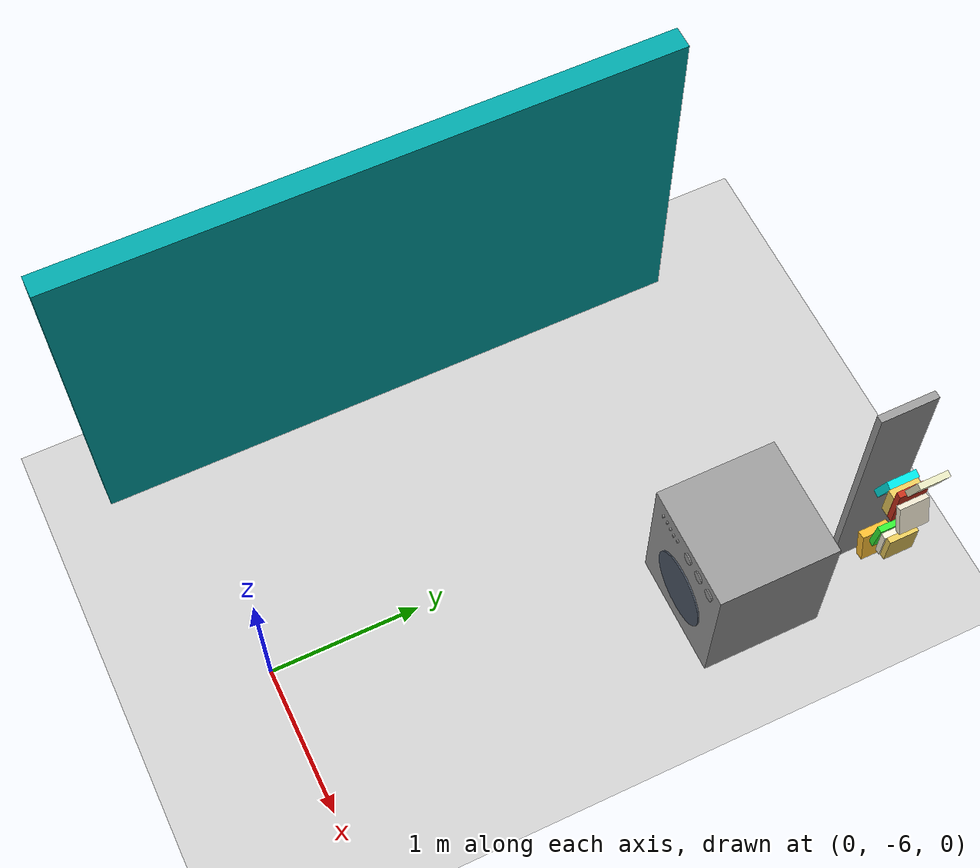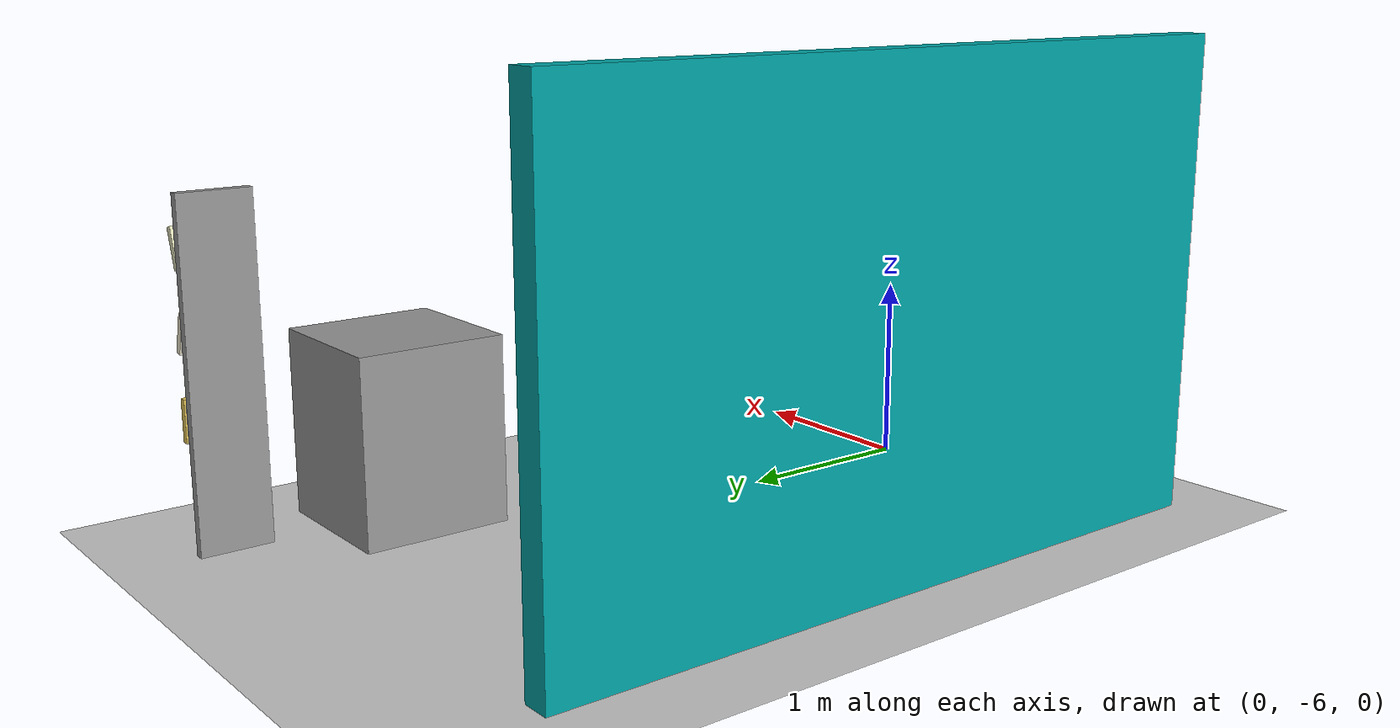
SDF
<sdf version="1.7">
 <world name="default">
  <model name="ground_plane">
   <static>1</static>
   <link name="link">
    <collision name="collision">
     <geometry><plane><normal>0 0 1</normal><size>100 100</size></plane></geometry>
     <surface>
      <contact><collide_bitmask>65535</collide_bitmask></contact>
      <friction><ode><mu>100</mu><mu2>50</mu2></ode></friction>
     </surface>
    </collision>
    <visual name="visual">
     <cast_shadows>0</cast_shadows>
     <geometry><plane><normal>0 0 1</normal><size>100 100</size></plane></geometry>
     <material>
      <script><uri>file://media/materials/scripts/gazebo.material</uri><name>Gazebo/Grey</name></script>
     </material>
    </visual>
   </link>
  </model>
  <model name="my_building_p4">
   <link name="Wall_30">
    <pose>-1.57502 -7.45997 0 0 -0 1.57081</pose>
    <inertial>
     <mass>1</mass>
     <inertia><ixx>1</ixx><ixy>0</ixy><ixz>0</ixz><iyy>1</iyy><iyz>0</iyz><izz>1</izz></inertia>
    </inertial>
    <visual name="Wall_30_Visual">
     <pose>0 0 1.25 0 -0 0</pose>
     <geometry><box><size>3.99989 0.15 2.5</size></box></geometry>
     <material>
      <script><uri>file://media/materials/scripts/gazebo.material</uri><name>Gazebo/Grey</name></script>
      <ambient>0 0.647 0.655 1</ambient>
      <shader type="pixel"><normal_map>__default__</normal_map></shader>
      <diffuse>0 0.647 0.655 1</diffuse>
      <specular>0.01 0.01 0.01 1</specular>
      <emissive>0 0 0 1</emissive>
     </material>
     <meta><layer>0</layer></meta>
    </visual>
    <collision name="Wall_30_Collision">
     <pose>0 0 1.25 0 -0 0</pose>
     <geometry><box><size>3.99989 0.15 2.5</size></box></geometry>
     <surface>
      <friction>
       <ode><mu>1</mu><mu2>1</mu2><fdir1>0 0 0</fdir1><slip1>0</slip1><slip2>0</slip2></ode>
       <torsional>
        <coefficient>1</coefficient>
        <patch_radius>0</patch_radius>
        <surface_radius>0</surface_radius>
        <use_patch_radius>1</use_patch_radius>
        <ode><slip>0</slip></ode>
       </torsional>
      </friction>
      <bounce><restitution_coefficient>0</restitution_coefficient><threshold>1e+06</threshold></bounce>
      <contact>
       <collide_without_contact>0</collide_without_contact>
       <collide_without_contact_bitmask>1</collide_without_contact_bitmask>
       <collide_bitmask>1</collide_bitmask>
       <ode>
        <soft_cfm>0</soft_cfm>
        <soft_erp>0.2</soft_erp>
        <kp>1e+13</kp>
        <kd>1</kd>
        <max_vel>0.01</max_vel>
        <min_depth>0</min_depth>
       </ode>
       <bullet>
        <split_impulse>1</split_impulse>
        <split_impulse_penetration_threshold>-0.01</split_impulse_penetration_threshold>
        <soft_cfm>0</soft_cfm>
        <soft_erp>0.2</soft_erp>
        <kp>1e+13</kp>
        <kd>1</kd>
       </bullet>
      </contact>
     </surface>
    </collision>
   </link>
   <static>1</static>
   <pose>-0.017657 2.964 0 0 -0 0</pose>
  </model>
  <model name="my_washing_machine">
   <link name="link">
    <inertial>
     <mass>1</mass>
     <inertia>
      <ixx>0.166667</ixx>
      <ixy>0</ixy>
      <ixz>0</ixz>
      <iyy>0.166667</iyy>
      <iyz>0</iyz>
      <izz>0.166667</izz>
     </inertia>
    </inertial>
    <pose>-0.002708 -0.04821 0 0 -0 0</pose>
    <visual name="visual">
     <geometry><box><size>0.8 0.8 1</size></box></geometry>
     <material>
      <script><name>Gazebo/Grey</name><uri>file://media/materials/scripts/gazebo.material</uri></script>
      <shader type="pixel"><normal_map>__default__</normal_map></shader>
      <ambient>0.9 0.9 0.9 0</ambient>
      <diffuse>0.9 0.9 0.9 1</diffuse>
      <specular>0.01 0.01 0.01 1</specular>
      <emissive>0 0 0 1</emissive>
     </material>
     <pose>0 0 0.5 0 -0 0</pose>
    </visual>
    <collision name="collision">
     <pose>0 0 0.5 0 -0 0</pose>
     <geometry><box><size>0.8 0.8 1</size></box></geometry>
     <surface>
      <friction>
       <ode><mu>1</mu><mu2>1</mu2><fdir1>0 0 0</fdir1><slip1>0</slip1><slip2>0</slip2></ode>
       <torsional>
        <coefficient>1</coefficient>
        <patch_radius>0</patch_radius>
        <surface_radius>0</surface_radius>
        <use_patch_radius>1</use_patch_radius>
        <ode><slip>0</slip></ode>
       </torsional>
      </friction>
      <bounce><restitution_coefficient>0</restitution_coefficient><threshold>1e+06</threshold></bounce>
      <contact>
       <collide_without_contact>0</collide_without_contact>
       <collide_without_contact_bitmask>1</collide_without_contact_bitmask>
       <collide_bitmask>1</collide_bitmask>
       <ode>
        <soft_cfm>0</soft_cfm>
        <soft_erp>0.2</soft_erp>
        <kp>1e+13</kp>
        <kd>1</kd>
        <max_vel>0.01</max_vel>
        <min_depth>0</min_depth>
       </ode>
       <bullet>
        <split_impulse>1</split_impulse>
        <split_impulse_penetration_threshold>-0.01</split_impulse_penetration_threshold>
        <soft_cfm>0</soft_cfm>
        <soft_erp>0.2</soft_erp>
        <kp>1e+13</kp>
        <kd>1</kd>
       </bullet>
      </contact>
     </surface>
    </collision>
   </link>
   <link name="link_0">
    <inertial>
     <mass>1</mass>
     <inertia><ixx>0.145833</ixx><ixy>0</ixy><ixz>0</ixz><iyy>0.145833</iyy><iyz>0</iyz><izz>0.125</izz></inertia>
    </inertial>
    <pose>0.004091 -0.46144 0.442681 0 -0 0</pose>
    <visual name="visual">
     <pose>0 0 0 1.5707 -0 0</pose>
     <geometry><cylinder><radius>0.25</radius><length>0.01</length></cylinder></geometry>
     <material>
      <lighting>1</lighting>
      <script><uri>file://media/materials/scripts/gazebo.material</uri><name>Gazebo/Grey</name></script>
      <shader type="pixel"><normal_map>__default__</normal_map></shader>
      <ambient>0.3 0.34 0.4 1</ambient>
      <diffuse>0.3 0.34 0.4 1</diffuse>
      <specular>0.01 0.01 0.01 1</specular>
      <emissive>0 0 0 1</emissive>
     </material>
    </visual>
    <collision name="collision">
     <pose>0 0 0 1.5707 -0 0</pose>
     <geometry><cylinder><radius>0.25</radius><length>0.01</length></cylinder></geometry>
     <surface>
      <friction>
       <ode><mu>1</mu><mu2>1</mu2><fdir1>0 0 0</fdir1><slip1>0</slip1><slip2>0</slip2></ode>
       <torsional>
        <coefficient>1</coefficient>
        <patch_radius>0</patch_radius>
        <surface_radius>0</surface_radius>
        <use_patch_radius>1</use_patch_radius>
        <ode><slip>0</slip></ode>
       </torsional>
      </friction>
      <bounce><restitution_coefficient>0</restitution_coefficient><threshold>1e+06</threshold></bounce>
      <contact>
       <collide_without_contact>0</collide_without_contact>
       <collide_without_contact_bitmask>1</collide_without_contact_bitmask>
       <collide_bitmask>1</collide_bitmask>
       <ode>
        <soft_cfm>0</soft_cfm>
        <soft_erp>0.2</soft_erp>
        <kp>1e+13</kp>
        <kd>1</kd>
        <max_vel>0.01</max_vel>
        <min_depth>0</min_depth>
       </ode>
       <bullet>
        <split_impulse>1</split_impulse>
        <split_impulse_penetration_threshold>-0.01</split_impulse_penetration_threshold>
        <soft_cfm>0</soft_cfm>
        <soft_erp>0.2</soft_erp>
        <kp>1e+13</kp>
        <kd>1</kd>
       </bullet>
      </contact>
     </surface>
    </collision>
   </link>
   <link name="link_0_clone">
    <inertial>
     <mass>1</mass>
     <inertia><ixx>0.145833</ixx><ixy>0</ixy><ixz>0</ixz><iyy>0.145833</iyy><iyz>0</iyz><izz>0.125</izz></inertia>
    </inertial>
    <pose>0.277824 -0.452536 0.894004 0 -0 0</pose>
    <visual name="visual">
     <pose>0 0 0 1.5707 -0 0</pose>
     <geometry><cylinder><radius>0.04</radius><length>0.01</length></cylinder></geometry>
     <material>
      <lighting>1</lighting>
      <script><uri>file://media/materials/scripts/gazebo.material</uri><name>Gazebo/Grey</name></script>
      <shader type="pixel"><normal_map>__default__</normal_map></shader>
      <ambient>0.8 0.8 0.8 1</ambient>
      <diffuse>0.8 0.8 0.8 1</diffuse>
      <specular>0.01 0.01 0.01 1</specular>
      <emissive>0 0 0 1</emissive>
     </material>
    </visual>
    <collision name="collision">
     <pose>0 0 0 1.5707 -0 0</pose>
     <geometry><cylinder><radius>0.04</radius><length>0.01</length></cylinder></geometry>
     <surface>
      <friction>
       <ode><mu>1</mu><mu2>1</mu2><fdir1>0 0 0</fdir1><slip1>0</slip1><slip2>0</slip2></ode>
       <torsional>
        <coefficient>1</coefficient>
        <patch_radius>0</patch_radius>
        <surface_radius>0</surface_radius>
        <use_patch_radius>1</use_patch_radius>
        <ode><slip>0</slip></ode>
       </torsional>
      </friction>
      <bounce><restitution_coefficient>0</restitution_coefficient><threshold>1e+06</threshold></bounce>
      <contact>
       <collide_without_contact>0</collide_without_contact>
       <collide_without_contact_bitmask>1</collide_without_contact_bitmask>
       <collide_bitmask>1</collide_bitmask>
       <ode>
        <soft_cfm>0</soft_cfm>
        <soft_erp>0.2</soft_erp>
        <kp>1e+13</kp>
        <kd>1</kd>
        <max_vel>0.01</max_vel>
        <min_depth>0</min_depth>
       </ode>
       <bullet>
        <split_impulse>1</split_impulse>
        <split_impulse_penetration_threshold>-0.01</split_impulse_penetration_threshold>
        <soft_cfm>0</soft_cfm>
        <soft_erp>0.2</soft_erp>
        <kp>1e+13</kp>
        <kd>1</kd>
       </bullet>
      </contact>
     </surface>
    </collision>
   </link>
   <link name="link_0_clone_clone">
    <inertial>
     <mass>1</mass>
     <inertia><ixx>0.145833</ixx><ixy>0</ixy><ixz>0</ixz><iyy>0.145833</iyy><iyz>0</iyz><izz>0.125</izz></inertia>
    </inertial>
    <pose>0.152191 -0.452057 0.894004 0 -0 0</pose>
    <visual name="visual">
     <pose>0 0 0 1.5707 -0 0</pose>
     <geometry><cylinder><radius>0.04</radius><length>0.01</length></cylinder></geometry>
     <material>
      <lighting>1</lighting>
      <script><uri>file://media/materials/scripts/gazebo.material</uri><name>Gazebo/Grey</name></script>
      <shader type="pixel"><normal_map>__default__</normal_map></shader>
      <ambient>0.8 0.8 0.8 1</ambient>
      <diffuse>0.8 0.8 0.8 1</diffuse>
      <specular>0.01 0.01 0.01 1</specular>
      <emissive>0 0 0 1</emissive>
     </material>
    </visual>
    <collision name="collision">
     <pose>0 0 0 1.5707 -0 0</pose>
     <geometry><cylinder><radius>0.04</radius><length>0.01</length></cylinder></geometry>
     <surface>
      <friction>
       <ode><mu>1</mu><mu2>1</mu2><fdir1>0 0 0</fdir1><slip1>0</slip1><slip2>0</slip2></ode>
       <torsional>
        <coefficient>1</coefficient>
        <patch_radius>0</patch_radius>
        <surface_radius>0</surface_radius>
        <use_patch_radius>1</use_patch_radius>
        <ode><slip>0</slip></ode>
       </torsional>
      </friction>
      <bounce><restitution_coefficient>0</restitution_coefficient><threshold>1e+06</threshold></bounce>
      <contact>
       <collide_without_contact>0</collide_without_contact>
       <collide_without_contact_bitmask>1</collide_without_contact_bitmask>
       <collide_bitmask>1</collide_bitmask>
       <ode>
        <soft_cfm>0</soft_cfm>
        <soft_erp>0.2</soft_erp>
        <kp>1e+13</kp>
        <kd>1</kd>
        <max_vel>0.01</max_vel>
        <min_depth>0</min_depth>
       </ode>
       <bullet>
        <split_impulse>1</split_impulse>
        <split_impulse_penetration_threshold>-0.01</split_impulse_penetration_threshold>
        <soft_cfm>0</soft_cfm>
        <soft_erp>0.2</soft_erp>
        <kp>1e+13</kp>
        <kd>1</kd>
       </bullet>
      </contact>
     </surface>
    </collision>
   </link>
   <link name="link_0_clone_clone_0">
    <inertial>
     <mass>1</mass>
     <inertia><ixx>0.145833</ixx><ixy>0</ixy><ixz>0</ixz><iyy>0.145833</iyy><iyz>0</iyz><izz>0.125</izz></inertia>
    </inertial>
    <pose>0.021824 -0.451823 0.894004 0 -0 0</pose>
    <visual name="visual">
     <pose>0 0 0 1.5707 -0 0</pose>
     <geometry><cylinder><radius>0.04</radius><length>0.01</length></cylinder></geometry>
     <material>
      <lighting>1</lighting>
      <script><uri>file://media/materials/scripts/gazebo.material</uri><name>Gazebo/Grey</name></script>
      <shader type="pixel"><normal_map>__default__</normal_map></shader>
      <ambient>0.8 0.8 0.8 1</ambient>
      <diffuse>0.8 0.8 0.8 1</diffuse>
      <specular>0.01 0.01 0.01 1</specular>
      <emissive>0 0 0 1</emissive>
     </material>
    </visual>
    <collision name="collision">
     <pose>0 0 0 1.5707 -0 0</pose>
     <geometry><cylinder><radius>0.04</radius><length>0.01</length></cylinder></geometry>
     <surface>
      <friction>
       <ode><mu>1</mu><mu2>1</mu2><fdir1>0 0 0</fdir1><slip1>0</slip1><slip2>0</slip2></ode>
       <torsional>
        <coefficient>1</coefficient>
        <patch_radius>0</patch_radius>
        <surface_radius>0</surface_radius>
        <use_patch_radius>1</use_patch_radius>
        <ode><slip>0</slip></ode>
       </torsional>
      </friction>
      <bounce><restitution_coefficient>0</restitution_coefficient><threshold>1e+06</threshold></bounce>
      <contact>
       <collide_without_contact>0</collide_without_contact>
       <collide_without_contact_bitmask>1</collide_without_contact_bitmask>
       <collide_bitmask>1</collide_bitmask>
       <ode>
        <soft_cfm>0</soft_cfm>
        <soft_erp>0.2</soft_erp>
        <kp>1e+13</kp>
        <kd>1</kd>
        <max_vel>0.01</max_vel>
        <min_depth>0</min_depth>
       </ode>
       <bullet>
        <split_impulse>1</split_impulse>
        <split_impulse_penetration_threshold>-0.01</split_impulse_penetration_threshold>
        <soft_cfm>0</soft_cfm>
        <soft_erp>0.2</soft_erp>
        <kp>1e+13</kp>
        <kd>1</kd>
       </bullet>
      </contact>
     </surface>
    </collision>
   </link>
   <link name="link_0_clone_clone_0_clone">
    <inertial>
     <mass>1</mass>
     <inertia><ixx>0.145833</ixx><ixy>0</ixy><ixz>0</ixz><iyy>0.145833</iyy><iyz>0</iyz><izz>0.125</izz></inertia>
    </inertial>
    <pose>-0.14749 -0.45922 0.90143 0 -0 0</pose>
    <visual name="visual">
     <pose>0 0 0 1.5707 -0 0</pose>
     <geometry><cylinder><radius>0.01</radius><length>0.01</length></cylinder></geometry>
     <material>
      <lighting>1</lighting>
      <script><uri>file://media/materials/scripts/gazebo.material</uri><name>Gazebo/Grey</name></script>
      <shader type="pixel"><normal_map>__default__</normal_map></shader>
      <ambient>0.8 0.8 0.8 1</ambient>
      <diffuse>0.8 0.8 0.8 1</diffuse>
      <specular>0.01 0.01 0.01 1</specular>
      <emissive>0 0 0 1</emissive>
     </material>
    </visual>
    <collision name="collision">
     <pose>0 0 0 1.5707 -0 0</pose>
     <geometry><cylinder><radius>0.01</radius><length>0.01</length></cylinder></geometry>
     <surface>
      <friction>
       <ode><mu>1</mu><mu2>1</mu2><fdir1>0 0 0</fdir1><slip1>0</slip1><slip2>0</slip2></ode>
       <torsional>
        <coefficient>1</coefficient>
        <patch_radius>0</patch_radius>
        <surface_radius>0</surface_radius>
        <use_patch_radius>1</use_patch_radius>
        <ode><slip>0</slip></ode>
       </torsional>
      </friction>
      <bounce><restitution_coefficient>0</restitution_coefficient><threshold>1e+06</threshold></bounce>
      <contact>
       <collide_without_contact>0</collide_without_contact>
       <collide_without_contact_bitmask>1</collide_without_contact_bitmask>
       <collide_bitmask>1</collide_bitmask>
       <ode>
        <soft_cfm>0</soft_cfm>
        <soft_erp>0.2</soft_erp>
        <kp>1e+13</kp>
        <kd>1</kd>
        <max_vel>0.01</max_vel>
        <min_depth>0</min_depth>
       </ode>
       <bullet>
        <split_impulse>1</split_impulse>
        <split_impulse_penetration_threshold>-0.01</split_impulse_penetration_threshold>
        <soft_cfm>0</soft_cfm>
        <soft_erp>0.2</soft_erp>
        <kp>1e+13</kp>
        <kd>1</kd>
       </bullet>
      </contact>
     </surface>
    </collision>
   </link>
   <link name="link_0_clone_clone_0_clone_clone">
    <inertial>
     <mass>1</mass>
     <inertia><ixx>0.145833</ixx><ixy>0</ixy><ixz>0</ixz><iyy>0.145833</iyy><iyz>0</iyz><izz>0.125</izz></inertia>
    </inertial>
    <pose>-0.193775 -0.457102 0.90143 0 -0 0</pose>
    <visual name="visual">
     <pose>0 0 0 1.5707 -0 0</pose>
     <geometry><cylinder><radius>0.01</radius><length>0.01</length></cylinder></geometry>
     <material>
      <lighting>1</lighting>
      <script><uri>file://media/materials/scripts/gazebo.material</uri><name>Gazebo/Grey</name></script>
      <shader type="pixel"><normal_map>__default__</normal_map></shader>
      <ambient>0.8 0.8 0.8 1</ambient>
      <diffuse>0.8 0.8 0.8 1</diffuse>
      <specular>0.01 0.01 0.01 1</specular>
      <emissive>0 0 0 1</emissive>
     </material>
    </visual>
    <collision name="collision">
     <pose>0 0 0 1.5707 -0 0</pose>
     <geometry><cylinder><radius>0.01</radius><length>0.01</length></cylinder></geometry>
     <surface>
      <friction>
       <ode><mu>1</mu><mu2>1</mu2><fdir1>0 0 0</fdir1><slip1>0</slip1><slip2>0</slip2></ode>
       <torsional>
        <coefficient>1</coefficient>
        <patch_radius>0</patch_radius>
        <surface_radius>0</surface_radius>
        <use_patch_radius>1</use_patch_radius>
        <ode><slip>0</slip></ode>
       </torsional>
      </friction>
      <bounce><restitution_coefficient>0</restitution_coefficient><threshold>1e+06</threshold></bounce>
      <contact>
       <collide_without_contact>0</collide_without_contact>
       <collide_without_contact_bitmask>1</collide_without_contact_bitmask>
       <collide_bitmask>1</collide_bitmask>
       <ode>
        <soft_cfm>0</soft_cfm>
        <soft_erp>0.2</soft_erp>
        <kp>1e+13</kp>
        <kd>1</kd>
        <max_vel>0.01</max_vel>
        <min_depth>0</min_depth>
       </ode>
       <bullet>
        <split_impulse>1</split_impulse>
        <split_impulse_penetration_threshold>-0.01</split_impulse_penetration_threshold>
        <soft_cfm>0</soft_cfm>
        <soft_erp>0.2</soft_erp>
        <kp>1e+13</kp>
        <kd>1</kd>
       </bullet>
      </contact>
     </surface>
    </collision>
   </link>
   <link name="link_0_clone_clone_0_clone_clone_clone">
    <inertial>
     <mass>1</mass>
     <inertia><ixx>0.145833</ixx><ixy>0</ixy><ixz>0</ixz><iyy>0.145833</iyy><iyz>0</iyz><izz>0.125</izz></inertia>
    </inertial>
    <pose>-0.238107 -0.454271 0.90143 0 -0 0</pose>
    <visual name="visual">
     <pose>0 0 0 1.5707 -0 0</pose>
     <geometry><cylinder><radius>0.01</radius><length>0.01</length></cylinder></geometry>
     <material>
      <lighting>1</lighting>
      <script><uri>file://media/materials/scripts/gazebo.material</uri><name>Gazebo/Grey</name></script>
      <shader type="pixel"><normal_map>__default__</normal_map></shader>
      <ambient>0.8 0.8 0.8 1</ambient>
      <diffuse>0.8 0.8 0.8 1</diffuse>
      <specular>0.01 0.01 0.01 1</specular>
      <emissive>0 0 0 1</emissive>
     </material>
    </visual>
    <collision name="collision">
     <pose>0 0 0 1.5707 -0 0</pose>
     <geometry><cylinder><radius>0.01</radius><length>0.01</length></cylinder></geometry>
     <surface>
      <friction>
       <ode><mu>1</mu><mu2>1</mu2><fdir1>0 0 0</fdir1><slip1>0</slip1><slip2>0</slip2></ode>
       <torsional>
        <coefficient>1</coefficient>
        <patch_radius>0</patch_radius>
        <surface_radius>0</surface_radius>
        <use_patch_radius>1</use_patch_radius>
        <ode><slip>0</slip></ode>
       </torsional>
      </friction>
      <bounce><restitution_coefficient>0</restitution_coefficient><threshold>1e+06</threshold></bounce>
      <contact>
       <collide_without_contact>0</collide_without_contact>
       <collide_without_contact_bitmask>1</collide_without_contact_bitmask>
       <collide_bitmask>1</collide_bitmask>
       <ode>
        <soft_cfm>0</soft_cfm>
        <soft_erp>0.2</soft_erp>
        <kp>1e+13</kp>
        <kd>1</kd>
        <max_vel>0.01</max_vel>
        <min_depth>0</min_depth>
       </ode>
       <bullet>
        <split_impulse>1</split_impulse>
        <split_impulse_penetration_threshold>-0.01</split_impulse_penetration_threshold>
        <soft_cfm>0</soft_cfm>
        <soft_erp>0.2</soft_erp>
        <kp>1e+13</kp>
        <kd>1</kd>
       </bullet>
      </contact>
     </surface>
    </collision>
   </link>
   <link name="link_0_clone_clone_0_clone_clone_clone_clone">
    <inertial>
     <mass>1</mass>
     <inertia><ixx>0.145833</ixx><ixy>0</ixy><ixz>0</ixz><iyy>0.145833</iyy><iyz>0</iyz><izz>0.125</izz></inertia>
    </inertial>
    <pose>-0.286219 -0.455562 0.902135 0 -0 0</pose>
    <visual name="visual">
     <pose>0 0 0 1.5707 -0 0</pose>
     <geometry><cylinder><radius>0.01</radius><length>0.01</length></cylinder></geometry>
     <material>
      <lighting>1</lighting>
      <script><uri>file://media/materials/scripts/gazebo.material</uri><name>Gazebo/Grey</name></script>
      <shader type="pixel"><normal_map>__default__</normal_map></shader>
      <ambient>0.8 0.8 0.8 1</ambient>
      <diffuse>0.8 0.8 0.8 1</diffuse>
      <specular>0.01 0.01 0.01 1</specular>
      <emissive>0 0 0 1</emissive>
     </material>
    </visual>
    <collision name="collision">
     <pose>0 0 0 1.5707 -0 0</pose>
     <geometry><cylinder><radius>0.01</radius><length>0.01</length></cylinder></geometry>
     <surface>
      <friction>
       <ode><mu>1</mu><mu2>1</mu2><fdir1>0 0 0</fdir1><slip1>0</slip1><slip2>0</slip2></ode>
       <torsional>
        <coefficient>1</coefficient>
        <patch_radius>0</patch_radius>
        <surface_radius>0</surface_radius>
        <use_patch_radius>1</use_patch_radius>
        <ode><slip>0</slip></ode>
       </torsional>
      </friction>
      <bounce><restitution_coefficient>0</restitution_coefficient><threshold>1e+06</threshold></bounce>
      <contact>
       <collide_without_contact>0</collide_without_contact>
       <collide_without_contact_bitmask>1</collide_without_contact_bitmask>
       <collide_bitmask>1</collide_bitmask>
       <ode>
        <soft_cfm>0</soft_cfm>
        <soft_erp>0.2</soft_erp>
        <kp>1e+13</kp>
        <kd>1</kd>
        <max_vel>0.01</max_vel>
        <min_depth>0</min_depth>
       </ode>
       <bullet>
        <split_impulse>1</split_impulse>
        <split_impulse_penetration_threshold>-0.01</split_impulse_penetration_threshold>
        <soft_cfm>0</soft_cfm>
        <soft_erp>0.2</soft_erp>
        <kp>1e+13</kp>
        <kd>1</kd>
       </bullet>
      </contact>
     </surface>
    </collision>
   </link>
   <link name="link_0_clone_clone_0_clone_clone_clone_clone_0">
    <inertial>
     <mass>1</mass>
     <inertia><ixx>0.145833</ixx><ixy>0</ixy><ixz>0</ixz><iyy>0.145833</iyy><iyz>0</iyz><izz>0.125</izz></inertia>
    </inertial>
    <pose>-0.103977 -0.455433 0.90143 0 -0 0</pose>
    <visual name="visual">
     <pose>0 0 0 1.5707 -0 0</pose>
     <geometry><cylinder><radius>0.01</radius><length>0.01</length></cylinder></geometry>
     <material>
      <lighting>1</lighting>
      <script><uri>file://media/materials/scripts/gazebo.material</uri><name>Gazebo/Grey</name></script>
      <shader type="pixel"><normal_map>__default__</normal_map></shader>
      <ambient>0.8 0.8 0.8 1</ambient>
      <diffuse>0.8 0.8 0.8 1</diffuse>
      <specular>0.01 0.01 0.01 1</specular>
      <emissive>0 0 0 1</emissive>
     </material>
    </visual>
    <collision name="collision">
     <pose>0 0 0 1.5707 -0 0</pose>
     <geometry><cylinder><radius>0.01</radius><length>0.01</length></cylinder></geometry>
     <surface>
      <friction>
       <ode><mu>1</mu><mu2>1</mu2><fdir1>0 0 0</fdir1><slip1>0</slip1><slip2>0</slip2></ode>
       <torsional>
        <coefficient>1</coefficient>
        <patch_radius>0</patch_radius>
        <surface_radius>0</surface_radius>
        <use_patch_radius>1</use_patch_radius>
        <ode><slip>0</slip></ode>
       </torsional>
      </friction>
      <bounce><restitution_coefficient>0</restitution_coefficient><threshold>1e+06</threshold></bounce>
      <contact>
       <collide_without_contact>0</collide_without_contact>
       <collide_without_contact_bitmask>1</collide_without_contact_bitmask>
       <collide_bitmask>1</collide_bitmask>
       <ode>
        <soft_cfm>0</soft_cfm>
        <soft_erp>0.2</soft_erp>
        <kp>1e+13</kp>
        <kd>1</kd>
        <max_vel>0.01</max_vel>
        <min_depth>0</min_depth>
       </ode>
       <bullet>
        <split_impulse>1</split_impulse>
        <split_impulse_penetration_threshold>-0.01</split_impulse_penetration_threshold>
        <soft_cfm>0</soft_cfm>
        <soft_erp>0.2</soft_erp>
        <kp>1e+13</kp>
        <kd>1</kd>
       </bullet>
      </contact>
     </surface>
    </collision>
   </link>
   <static>1</static>
   <pose>0.739084 -3.10929 0 0 -0 0</pose>
  </model>
  <model name="my_bookshelf">
   <link name="link_0_clone_0_clone_1_clone_0">
    <inertial>
     <mass>1</mass>
     <inertia>
      <ixx>0.166667</ixx>
      <ixy>0</ixy>
      <ixz>0</ixz>
      <iyy>0.166667</iyy>
      <iyz>0</iyz>
      <izz>0.166667</izz>
     </inertia>
    </inertial>
    <pose>0.163095 0.41037 1.0549 0 -0 0</pose>
    <visual name="visual">
     <pose>0 0 0 -0.3 0 0</pose>
     <geometry><box><size>0.2 0.04 0.22</size></box></geometry>
     <material>
      <lighting>1</lighting>
      <script><uri>file://media/materials/scripts/gazebo.material</uri><name>Gazebo/Grey</name></script>
      <shader type="pixel"><normal_map>__default__</normal_map></shader>
      <ambient>0.96 0.93 0.84 1</ambient>
      <diffuse>0.96 0.93 0.84 1</diffuse>
      <specular>0.01 0.01 0.01 1</specular>
      <emissive>0 0 0 1</emissive>
     </material>
    </visual>
    <collision name="collision">
     <pose>0 0 0 -0.3 0 0</pose>
     <geometry><box><size>0.2 0.04 0.22</size></box></geometry>
     <surface>
      <friction>
       <ode><mu>1</mu><mu2>1</mu2><fdir1>0 0 0</fdir1><slip1>0</slip1><slip2>0</slip2></ode>
       <torsional>
        <coefficient>1</coefficient>
        <patch_radius>0</patch_radius>
        <surface_radius>0</surface_radius>
        <use_patch_radius>1</use_patch_radius>
        <ode><slip>0</slip></ode>
       </torsional>
      </friction>
      <bounce><restitution_coefficient>0</restitution_coefficient><threshold>1e+06</threshold></bounce>
      <contact>
       <collide_without_contact>0</collide_without_contact>
       <collide_without_contact_bitmask>1</collide_without_contact_bitmask>
       <collide_bitmask>1</collide_bitmask>
       <ode>
        <soft_cfm>0</soft_cfm>
        <soft_erp>0.2</soft_erp>
        <kp>1e+13</kp>
        <kd>1</kd>
        <max_vel>0.01</max_vel>
        <min_depth>0</min_depth>
       </ode>
       <bullet>
        <split_impulse>1</split_impulse>
        <split_impulse_penetration_threshold>-0.01</split_impulse_penetration_threshold>
        <soft_cfm>0</soft_cfm>
        <soft_erp>0.2</soft_erp>
        <kp>1e+13</kp>
        <kd>1</kd>
       </bullet>
      </contact>
     </surface>
    </collision>
   </link>
   <link name="link_0_clone_0_clone_1_clone_0_clone">
    <inertial>
     <mass>1</mass>
     <inertia>
      <ixx>0.166667</ixx>
      <ixy>0</ixy>
      <ixz>0</ixz>
      <iyy>0.166667</iyy>
      <iyz>0</iyz>
      <izz>0.166667</izz>
     </inertia>
    </inertial>
    <pose>0.169255 0.470698 0.604493 0 -0 0</pose>
    <visual name="visual">
     <geometry><box><size>0.2 0.04 0.22</size></box></geometry>
     <material>
      <lighting>1</lighting>
      <script><uri>file://media/materials/scripts/gazebo.material</uri><name>Gazebo/Grey</name></script>
      <shader type="pixel"><normal_map>__default__</normal_map></shader>
      <ambient>0.96 0.93 0.84 1</ambient>
      <diffuse>0.96 0.93 0.84 1</diffuse>
      <specular>0.01 0.01 0.01 1</specular>
      <emissive>0 0 0 1</emissive>
     </material>
    </visual>
    <collision name="collision">
     <geometry><box><size>0.2 0.04 0.22</size></box></geometry>
     <surface>
      <friction>
       <ode><mu>1</mu><mu2>1</mu2><fdir1>0 0 0</fdir1><slip1>0</slip1><slip2>0</slip2></ode>
       <torsional>
        <coefficient>1</coefficient>
        <patch_radius>0</patch_radius>
        <surface_radius>0</surface_radius>
        <use_patch_radius>1</use_patch_radius>
        <ode><slip>0</slip></ode>
       </torsional>
      </friction>
      <bounce><restitution_coefficient>0</restitution_coefficient><threshold>1e+06</threshold></bounce>
      <contact>
       <collide_without_contact>0</collide_without_contact>
       <collide_without_contact_bitmask>1</collide_without_contact_bitmask>
       <collide_bitmask>1</collide_bitmask>
       <ode>
        <soft_cfm>0</soft_cfm>
        <soft_erp>0.2</soft_erp>
        <kp>1e+13</kp>
        <kd>1</kd>
        <max_vel>0.01</max_vel>
        <min_depth>0</min_depth>
       </ode>
       <bullet>
        <split_impulse>1</split_impulse>
        <split_impulse_penetration_threshold>-0.01</split_impulse_penetration_threshold>
        <soft_cfm>0</soft_cfm>
        <soft_erp>0.2</soft_erp>
        <kp>1e+13</kp>
        <kd>1</kd>
       </bullet>
      </contact>
     </surface>
    </collision>
   </link>
   <link name="link_0_clone_0_clone_1_clone_0_clone_0">
    <inertial>
     <mass>1</mass>
     <inertia>
      <ixx>0.166667</ixx>
      <ixy>0</ixy>
      <ixz>0</ixz>
      <iyy>0.166667</iyy>
      <iyz>0</iyz>
      <izz>0.166667</izz>
     </inertia>
    </inertial>
    <pose>0.160366 0.392824 1.48014 0 -0 0</pose>
    <visual name="visual">
     <pose>0 0 0 0.3 -0 0</pose>
     <geometry><box><size>0.2 0.04 0.22</size></box></geometry>
     <material>
      <lighting>1</lighting>
      <script><uri>file://media/materials/scripts/gazebo.material</uri><name>Gazebo/Grey</name></script>
      <shader type="pixel"><normal_map>__default__</normal_map></shader>
      <ambient>0.9 0.9 0.75 1</ambient>
      <diffuse>0.9 0.9 0.75 1</diffuse>
      <specular>0.01 0.01 0.01 1</specular>
      <emissive>0 0 0 1</emissive>
     </material>
    </visual>
    <collision name="collision">
     <pose>0 0 0 0.3 -0 0</pose>
     <geometry><box><size>0.2 0.04 0.22</size></box></geometry>
     <surface>
      <friction>
       <ode><mu>1</mu><mu2>1</mu2><fdir1>0 0 0</fdir1><slip1>0</slip1><slip2>0</slip2></ode>
       <torsional>
        <coefficient>1</coefficient>
        <patch_radius>0</patch_radius>
        <surface_radius>0</surface_radius>
        <use_patch_radius>1</use_patch_radius>
        <ode><slip>0</slip></ode>
       </torsional>
      </friction>
      <bounce><restitution_coefficient>0</restitution_coefficient><threshold>1e+06</threshold></bounce>
      <contact>
       <collide_without_contact>0</collide_without_contact>
       <collide_without_contact_bitmask>1</collide_without_contact_bitmask>
       <collide_bitmask>1</collide_bitmask>
       <ode>
        <soft_cfm>0</soft_cfm>
        <soft_erp>0.2</soft_erp>
        <kp>1e+13</kp>
        <kd>1</kd>
        <max_vel>0.01</max_vel>
        <min_depth>0</min_depth>
       </ode>
       <bullet>
        <split_impulse>1</split_impulse>
        <split_impulse_penetration_threshold>-0.01</split_impulse_penetration_threshold>
        <soft_cfm>0</soft_cfm>
        <soft_erp>0.2</soft_erp>
        <kp>1e+13</kp>
        <kd>1</kd>
       </bullet>
      </contact>
     </surface>
    </collision>
   </link>
   <link name="link_0_clone_0_clone_1_clone_0_clone_clone">
    <inertial>
     <mass>1</mass>
     <inertia>
      <ixx>0.166667</ixx>
      <ixy>0</ixy>
      <ixz>0</ixz>
      <iyy>0.166667</iyy>
      <iyz>0</iyz>
      <izz>0.166667</izz>
     </inertia>
    </inertial>
    <pose>0.161553 0.523575 0.616111 0 -0 0</pose>
    <visual name="visual">
     <pose>0 0 0 0.1 -0 0</pose>
     <geometry><box><size>0.2 0.04 0.24</size></box></geometry>
     <material>
      <lighting>1</lighting>
      <script><uri>file://media/materials/scripts/gazebo.material</uri><name>Gazebo/Grey</name></script>
      <shader type="pixel"><normal_map>__default__</normal_map></shader>
      <ambient>0.2 0.93 0.2 1</ambient>
      <diffuse>0.2 0.93 0.2 1</diffuse>
      <specular>0.01 0.01 0.01 1</specular>
      <emissive>0 0 0 1</emissive>
     </material>
    </visual>
    <collision name="collision">
     <pose>0 0 0 0.1 -0 0</pose>
     <geometry><box><size>0.2 0.04 0.24</size></box></geometry>
     <surface>
      <friction>
       <ode><mu>1</mu><mu2>1</mu2><fdir1>0 0 0</fdir1><slip1>0</slip1><slip2>0</slip2></ode>
       <torsional>
        <coefficient>1</coefficient>
        <patch_radius>0</patch_radius>
        <surface_radius>0</surface_radius>
        <use_patch_radius>1</use_patch_radius>
        <ode><slip>0</slip></ode>
       </torsional>
      </friction>
      <bounce><restitution_coefficient>0</restitution_coefficient><threshold>1e+06</threshold></bounce>
      <contact>
       <collide_without_contact>0</collide_without_contact>
       <collide_without_contact_bitmask>1</collide_without_contact_bitmask>
       <collide_bitmask>1</collide_bitmask>
       <ode>
        <soft_cfm>0</soft_cfm>
        <soft_erp>0.2</soft_erp>
        <kp>1e+13</kp>
        <kd>1</kd>
        <max_vel>0.01</max_vel>
        <min_depth>0</min_depth>
       </ode>
       <bullet>
        <split_impulse>1</split_impulse>
        <split_impulse_penetration_threshold>-0.01</split_impulse_penetration_threshold>
        <soft_cfm>0</soft_cfm>
        <soft_erp>0.2</soft_erp>
        <kp>1e+13</kp>
        <kd>1</kd>
       </bullet>
      </contact>
     </surface>
    </collision>
   </link>
   <link name="link_0_clone_0_clone_clone">
    <inertial>
     <mass>1</mass>
     <inertia>
      <ixx>0.166667</ixx>
      <ixy>0</ixy>
      <ixz>0</ixz>
      <iyy>0.166667</iyy>
      <iyz>0</iyz>
      <izz>0.166667</izz>
     </inertia>
    </inertial>
    <pose>0.167708 0.480351 1.09699 0 -0 0</pose>
    <visual name="visual">
     <geometry><box><size>0.2 0.04 0.31</size></box></geometry>
     <material>
      <lighting>1</lighting>
      <script><uri>file://media/materials/scripts/gazebo.material</uri><name>Gazebo/Grey</name></script>
      <shader type="pixel"><normal_map>__default__</normal_map></shader>
      <ambient>0.78 0.19 0.11 1</ambient>
      <diffuse>0.78 0.19 0.11 1</diffuse>
      <specular>0.01 0.01 0.01 1</specular>
      <emissive>0 0 0 1</emissive>
     </material>
    </visual>
    <collision name="collision">
     <geometry><box><size>0.2 0.04 0.31</size></box></geometry>
     <surface>
      <friction>
       <ode><mu>1</mu><mu2>1</mu2><fdir1>0 0 0</fdir1><slip1>0</slip1><slip2>0</slip2></ode>
       <torsional>
        <coefficient>1</coefficient>
        <patch_radius>0</patch_radius>
        <surface_radius>0</surface_radius>
        <use_patch_radius>1</use_patch_radius>
        <ode><slip>0</slip></ode>
       </torsional>
      </friction>
      <bounce><restitution_coefficient>0</restitution_coefficient><threshold>1e+06</threshold></bounce>
      <contact>
       <collide_without_contact>0</collide_without_contact>
       <collide_without_contact_bitmask>1</collide_without_contact_bitmask>
       <collide_bitmask>1</collide_bitmask>
       <ode>
        <soft_cfm>0</soft_cfm>
        <soft_erp>0.2</soft_erp>
        <kp>1e+13</kp>
        <kd>1</kd>
        <max_vel>0.01</max_vel>
        <min_depth>0</min_depth>
       </ode>
       <bullet>
        <split_impulse>1</split_impulse>
        <split_impulse_penetration_threshold>-0.01</split_impulse_penetration_threshold>
        <soft_cfm>0</soft_cfm>
        <soft_erp>0.2</soft_erp>
        <kp>1e+13</kp>
        <kd>1</kd>
       </bullet>
      </contact>
     </surface>
    </collision>
   </link>
   <link name="link_0_clone_clone_1_clone_clone_0_clone">
    <inertial>
     <mass>1</mass>
     <inertia>
      <ixx>0.166667</ixx>
      <ixy>0</ixy>
      <ixz>0</ixz>
      <iyy>0.166667</iyy>
      <iyz>0</iyz>
      <izz>0.166667</izz>
     </inertia>
    </inertial>
    <pose>0.223208 0.663002 0.162724 0 -0 0</pose>
    <visual name="visual">
     <pose>0 0 0 -0.2 0 0</pose>
     <geometry><box><size>0.2 0.06 0.23</size></box></geometry>
     <material>
      <lighting>1</lighting>
      <script><uri>file://media/materials/scripts/gazebo.material</uri><name>Gazebo/Grey</name></script>
      <shader type="pixel"><normal_map>__default__</normal_map></shader>
      <ambient>1 0.75 0.2 1</ambient>
      <diffuse>1 0.75 0.2 1</diffuse>
      <specular>0.01 0.01 0.01 1</specular>
      <emissive>0 0 0 1</emissive>
     </material>
    </visual>
    <collision name="collision">
     <pose>0 0 0 -0.2 0 0</pose>
     <geometry><box><size>0.2 0.06 0.23</size></box></geometry>
     <surface>
      <friction>
       <ode><mu>1</mu><mu2>1</mu2><fdir1>0 0 0</fdir1><slip1>0</slip1><slip2>0</slip2></ode>
       <torsional>
        <coefficient>1</coefficient>
        <patch_radius>0</patch_radius>
        <surface_radius>0</surface_radius>
        <use_patch_radius>1</use_patch_radius>
        <ode><slip>0</slip></ode>
       </torsional>
      </friction>
      <bounce><restitution_coefficient>0</restitution_coefficient><threshold>1e+06</threshold></bounce>
      <contact>
       <collide_without_contact>0</collide_without_contact>
       <collide_without_contact_bitmask>1</collide_without_contact_bitmask>
       <collide_bitmask>1</collide_bitmask>
       <ode>
        <soft_cfm>0</soft_cfm>
        <soft_erp>0.2</soft_erp>
        <kp>1e+13</kp>
        <kd>1</kd>
        <max_vel>0.01</max_vel>
        <min_depth>0</min_depth>
       </ode>
       <bullet>
        <split_impulse>1</split_impulse>
        <split_impulse_penetration_threshold>-0.01</split_impulse_penetration_threshold>
        <soft_cfm>0</soft_cfm>
        <soft_erp>0.2</soft_erp>
        <kp>1e+13</kp>
        <kd>1</kd>
       </bullet>
      </contact>
     </surface>
    </collision>
   </link>
   <link name="link_0_clone_clone_1_clone_clone_clone_clone_0">
    <inertial>
     <mass>1</mass>
     <inertia>
      <ixx>0.166667</ixx>
      <ixy>0</ixy>
      <ixz>0</ixz>
      <iyy>0.166667</iyy>
      <iyz>0</iyz>
      <izz>0.166667</izz>
     </inertia>
    </inertial>
    <pose>0.179151 0.620147 1.06168 0 -0 0</pose>
    <visual name="visual">
     <pose>0 0 0 0.3 -0 0</pose>
     <geometry><box><size>0.2 0.05 0.24</size></box></geometry>
     <material>
      <lighting>1</lighting>
      <script><uri>file://media/materials/scripts/gazebo.material</uri><name>Gazebo/Grey</name></script>
      <shader type="pixel"><normal_map>__default__</normal_map></shader>
      <ambient>0 0.9 0.9 1</ambient>
      <diffuse>0.8 0.8 0.8 1</diffuse>
      <specular>0.01 0.01 0.01 1</specular>
      <emissive>0 0 0 1</emissive>
     </material>
    </visual>
    <collision name="collision">
     <pose>0 0 0 0.3 -0 0</pose>
     <geometry><box><size>0.2 0.05 0.24</size></box></geometry>
     <surface>
      <friction>
       <ode><mu>1</mu><mu2>1</mu2><fdir1>0 0 0</fdir1><slip1>0</slip1><slip2>0</slip2></ode>
       <torsional>
        <coefficient>1</coefficient>
        <patch_radius>0</patch_radius>
        <surface_radius>0</surface_radius>
        <use_patch_radius>1</use_patch_radius>
        <ode><slip>0</slip></ode>
       </torsional>
      </friction>
      <bounce><restitution_coefficient>0</restitution_coefficient><threshold>1e+06</threshold></bounce>
      <contact>
       <collide_without_contact>0</collide_without_contact>
       <collide_without_contact_bitmask>1</collide_without_contact_bitmask>
       <collide_bitmask>1</collide_bitmask>
       <ode>
        <soft_cfm>0</soft_cfm>
        <soft_erp>0.2</soft_erp>
        <kp>1e+13</kp>
        <kd>1</kd>
        <max_vel>0.01</max_vel>
        <min_depth>0</min_depth>
       </ode>
       <bullet>
        <split_impulse>1</split_impulse>
        <split_impulse_penetration_threshold>-0.01</split_impulse_penetration_threshold>
        <soft_cfm>0</soft_cfm>
        <soft_erp>0.2</soft_erp>
        <kp>1e+13</kp>
        <kd>1</kd>
       </bullet>
      </contact>
     </surface>
    </collision>
   </link>
   <link name="link_0_clone_clone_3_clone_1">
    <inertial>
     <mass>1</mass>
     <inertia>
      <ixx>0.166667</ixx>
      <ixy>0</ixy>
      <ixz>0</ixz>
      <iyy>0.166667</iyy>
      <iyz>0</iyz>
      <izz>0.166667</izz>
     </inertia>
    </inertial>
    <pose>0.166204 0.531084 1.05588 0 -0 0</pose>
    <visual name="visual">
     <geometry><box><size>0.2 0.06 0.23</size></box></geometry>
     <material>
      <lighting>1</lighting>
      <script><uri>file://media/materials/scripts/gazebo.material</uri><name>Gazebo/Grey</name></script>
      <shader type="pixel"><normal_map>__default__</normal_map></shader>
      <ambient>0.91 0.79 0.36 1</ambient>
      <diffuse>0.91 0.79 0.36 1</diffuse>
      <specular>0.01 0.01 0.01 1</specular>
      <emissive>0 0 0 1</emissive>
     </material>
    </visual>
    <collision name="collision">
     <geometry><box><size>0.2 0.06 0.23</size></box></geometry>
     <surface>
      <friction>
       <ode><mu>1</mu><mu2>1</mu2><fdir1>0 0 0</fdir1><slip1>0</slip1><slip2>0</slip2></ode>
       <torsional>
        <coefficient>1</coefficient>
        <patch_radius>0</patch_radius>
        <surface_radius>0</surface_radius>
        <use_patch_radius>1</use_patch_radius>
        <ode><slip>0</slip></ode>
       </torsional>
      </friction>
      <bounce><restitution_coefficient>0</restitution_coefficient><threshold>1e+06</threshold></bounce>
      <contact>
       <collide_without_contact>0</collide_without_contact>
       <collide_without_contact_bitmask>1</collide_without_contact_bitmask>
       <collide_bitmask>1</collide_bitmask>
       <ode>
        <soft_cfm>0</soft_cfm>
        <soft_erp>0.2</soft_erp>
        <kp>1e+13</kp>
        <kd>1</kd>
        <max_vel>0.01</max_vel>
        <min_depth>0</min_depth>
       </ode>
       <bullet>
        <split_impulse>1</split_impulse>
        <split_impulse_penetration_threshold>-0.01</split_impulse_penetration_threshold>
        <soft_cfm>0</soft_cfm>
        <soft_erp>0.2</soft_erp>
        <kp>1e+13</kp>
        <kd>1</kd>
       </bullet>
      </contact>
     </surface>
    </collision>
   </link>
   <link name="link_0_clone_clone_3_clone_1_clone">
    <inertial>
     <mass>1</mass>
     <inertia>
      <ixx>0.166667</ixx>
      <ixy>0</ixy>
      <ixz>0</ixz>
      <iyy>0.166667</iyy>
      <iyz>0</iyz>
      <izz>0.166667</izz>
     </inertia>
    </inertial>
    <pose>0.177856 0.428369 0.612388 0 -0 0</pose>
    <visual name="visual">
     <geometry><box><size>0.2 0.04 0.23</size></box></geometry>
     <material>
      <lighting>1</lighting>
      <script><uri>file://media/materials/scripts/gazebo.material</uri><name>Gazebo/Grey</name></script>
      <shader type="pixel"><normal_map>__default__</normal_map></shader>
      <ambient>0.91 0.79 0.36 1</ambient>
      <diffuse>0.91 0.79 0.36 1</diffuse>
      <specular>0.01 0.01 0.01 1</specular>
      <emissive>0 0 0 1</emissive>
     </material>
    </visual>
    <collision name="collision">
     <geometry><box><size>0.2 0.04 0.23</size></box></geometry>
     <surface>
      <friction>
       <ode><mu>1</mu><mu2>1</mu2><fdir1>0 0 0</fdir1><slip1>0</slip1><slip2>0</slip2></ode>
       <torsional>
        <coefficient>1</coefficient>
        <patch_radius>0</patch_radius>
        <surface_radius>0</surface_radius>
        <use_patch_radius>1</use_patch_radius>
        <ode><slip>0</slip></ode>
       </torsional>
      </friction>
      <bounce><restitution_coefficient>0</restitution_coefficient><threshold>1e+06</threshold></bounce>
      <contact>
       <collide_without_contact>0</collide_without_contact>
       <collide_without_contact_bitmask>1</collide_without_contact_bitmask>
       <collide_bitmask>1</collide_bitmask>
       <ode>
        <soft_cfm>0</soft_cfm>
        <soft_erp>0.2</soft_erp>
        <kp>1e+13</kp>
        <kd>1</kd>
        <max_vel>0.01</max_vel>
        <min_depth>0</min_depth>
       </ode>
       <bullet>
        <split_impulse>1</split_impulse>
        <split_impulse_penetration_threshold>-0.01</split_impulse_penetration_threshold>
        <soft_cfm>0</soft_cfm>
        <soft_erp>0.2</soft_erp>
        <kp>1e+13</kp>
        <kd>1</kd>
       </bullet>
      </contact>
     </surface>
    </collision>
   </link>
   <link name="link_clone_0_clone">
    <inertial>
     <mass>1</mass>
     <inertia>
      <ixx>0.166667</ixx>
      <ixy>0</ixy>
      <ixz>0</ixz>
      <iyy>0.166667</iyy>
      <iyz>0</iyz>
      <izz>0.166667</izz>
     </inertia>
    </inertial>
    <pose>0.173251 0.740189 0.006003 0 -0 0</pose>
    <visual name="visual">
     <geometry><box><size>0.05 0.38 1.8</size></box></geometry>
     <material>
      <script><name>Gazebo/Grey</name><uri>file://media/materials/scripts/gazebo.material</uri></script>
      <shader type="pixel"><normal_map>__default__</normal_map></shader>
      <ambient>0.9 0.9 0.9 1</ambient>
      <diffuse>0.9 0.9 0.9 1</diffuse>
      <specular>0.01 0.01 0.01 1</specular>
      <emissive>0 0 0 1</emissive>
     </material>
     <pose>0 0 0.9 0 -0 1.5707</pose>
    </visual>
    <collision name="collision">
     <pose>0 0 0.9 0 -0 1.5707</pose>
     <geometry><box><size>0.05 0.38 1.8</size></box></geometry>
     <surface>
      <friction>
       <ode><mu>1</mu><mu2>1</mu2><fdir1>0 0 0</fdir1><slip1>0</slip1><slip2>0</slip2></ode>
       <torsional>
        <coefficient>1</coefficient>
        <patch_radius>0</patch_radius>
        <surface_radius>0</surface_radius>
        <use_patch_radius>1</use_patch_radius>
        <ode><slip>0</slip></ode>
       </torsional>
      </friction>
      <bounce><restitution_coefficient>0</restitution_coefficient><threshold>1e+06</threshold></bounce>
      <contact>
       <collide_without_contact>0</collide_without_contact>
       <collide_without_contact_bitmask>1</collide_without_contact_bitmask>
       <collide_bitmask>1</collide_bitmask>
       <ode>
        <soft_cfm>0</soft_cfm>
        <soft_erp>0.2</soft_erp>
        <kp>1e+13</kp>
        <kd>1</kd>
        <max_vel>0.01</max_vel>
        <min_depth>0</min_depth>
       </ode>
       <bullet>
        <split_impulse>1</split_impulse>
        <split_impulse_penetration_threshold>-0.01</split_impulse_penetration_threshold>
        <soft_cfm>0</soft_cfm>
        <soft_erp>0.2</soft_erp>
        <kp>1e+13</kp>
        <kd>1</kd>
       </bullet>
      </contact>
     </surface>
    </collision>
   </link>
   <static>1</static>
   <pose>1.53755 -2.44298 -0 0 -0 1.5708</pose>
  </model>
 </world>
</sdf>
